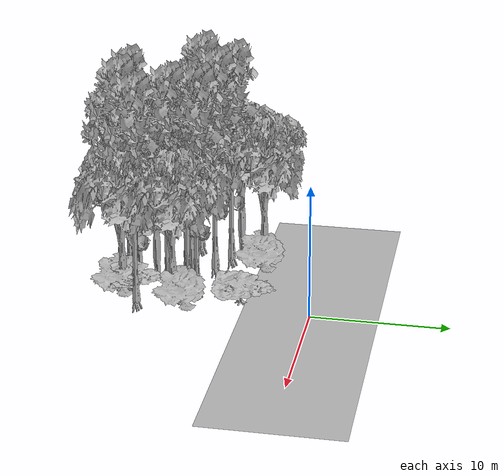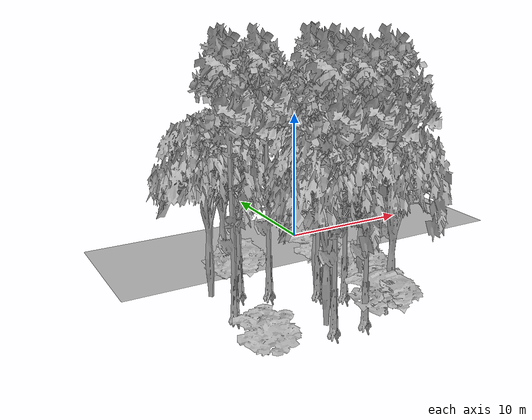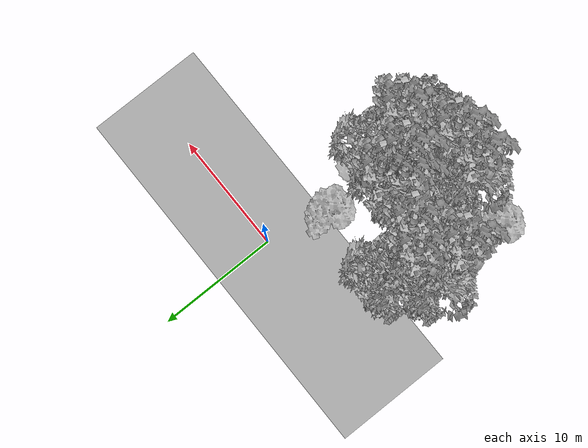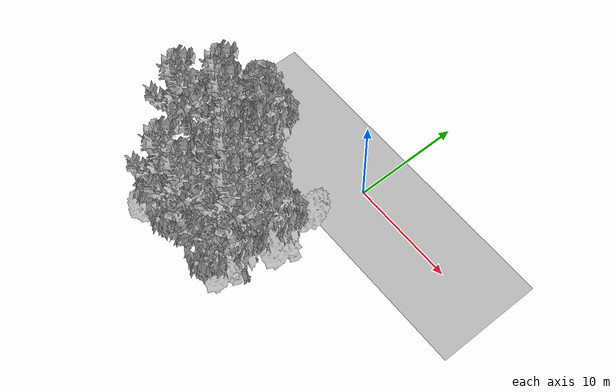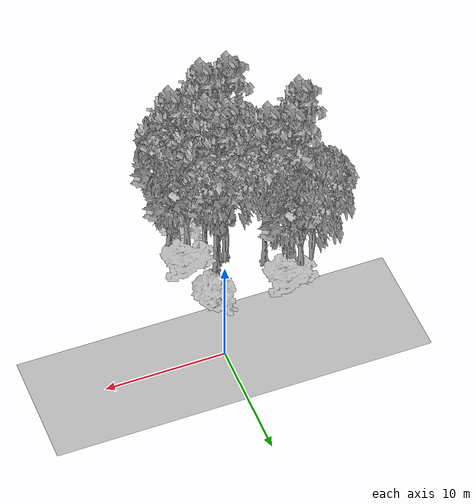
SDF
<sdf version="1.7">
 <world name="default">
  <model name="ground_plane">
   <static>1</static>
   <link name="link">
    <collision name="collision">
     <pose>-50 0 0 0 -0 0</pose>
     <geometry><plane><normal>0 0 1</normal><size>100 100</size></plane></geometry>
     <surface><contact><ode><min_depth>0.01</min_depth><max_vel>0</max_vel></ode></contact></surface>
    </collision>
    <visual name="grass">
     <cast_shadows>0</cast_shadows>
     <geometry>
      <mesh>
       <scale>0.5814285714285714 0.18142857142857144 0.1</scale>
       <uri>file://grass_plane/meshes/grass_plane.dae</uri>
      </mesh>
     </geometry>
    </visual>
   </link>
  </model>
  <model name="Tree 39">
   <static>1</static>
   <pose>-1.0714701937156619 -13.886423853938327 0 1.57079 -0 0</pose>
   <link name="link">
    <collision name="collision">
     <geometry><mesh><scale>3.5 5 3.5</scale><uri>model://tree_2/meshes/tree_2.obj</uri></mesh></geometry>
    </collision>
    <visual name="visual">
     <geometry><mesh><scale>3.5 5 3.5</scale><uri>model://tree_2/meshes/tree_2.obj</uri></mesh></geometry>
    </visual>
   </link>
  </model>
  <model name="Tree 43">
   <static>1</static>
   <pose>-6.698750496730447 -8.265199225288452 0 1.57079 -0 0</pose>
   <link name="link">
    <collision name="collision">
     <geometry><mesh><scale>3.5 5 3.5</scale><uri>model://tree_9/meshes/tree_9.obj</uri></mesh></geometry>
    </collision>
    <visual name="visual">
     <geometry><mesh><scale>3.5 5 3.5</scale><uri>model://tree_9/meshes/tree_9.obj</uri></mesh></geometry>
    </visual>
   </link>
  </model>
  <model name="Tree 58">
   <static>1</static>
   <pose>-3.5384705290955267 -14.71500353287118 0 1.57079 -0 0</pose>
   <link name="link">
    <collision name="collision">
     <geometry><mesh><scale>3.5 5 3.5</scale><uri>model://tree_9/meshes/tree_9.obj</uri></mesh></geometry>
    </collision>
    <visual name="visual">
     <geometry><mesh><scale>3.5 5 3.5</scale><uri>model://tree_9/meshes/tree_9.obj</uri></mesh></geometry>
    </visual>
   </link>
  </model>
  <model name="Tree 110">
   <static>1</static>
   <pose>-3.787657247852138 -9.318720739605117 0 1.57079 -0 0</pose>
   <link name="link">
    <collision name="collision">
     <geometry><mesh><scale>3.5 5 3.5</scale><uri>model://tree_2/meshes/tree_2.obj</uri></mesh></geometry>
    </collision>
    <visual name="visual">
     <geometry><mesh><scale>3.5 5 3.5</scale><uri>model://tree_2/meshes/tree_2.obj</uri></mesh></geometry>
    </visual>
   </link>
  </model>
  <model name="Tree 123">
   <static>1</static>
   <pose>-3.8772209081507043 -9.818877494798398 0 1.57079 -0 0</pose>
   <link name="link">
    <collision name="collision">
     <geometry><mesh><scale>3.5 5 3.5</scale><uri>model://tree_9/meshes/tree_9.obj</uri></mesh></geometry>
    </collision>
    <visual name="visual">
     <geometry><mesh><scale>3.5 5 3.5</scale><uri>model://tree_9/meshes/tree_9.obj</uri></mesh></geometry>
    </visual>
   </link>
  </model>
  <model name="Tree 160">
   <static>1</static>
   <pose>-5.743999839815061 -14.662072047235222 0 1.57079 -0 0</pose>
   <link name="link">
    <collision name="collision">
     <geometry><mesh><scale>3.5 5 3.5</scale><uri>model://tree_9/meshes/tree_9.obj</uri></mesh></geometry>
    </collision>
    <visual name="visual">
     <geometry><mesh><scale>3.5 5 3.5</scale><uri>model://tree_9/meshes/tree_9.obj</uri></mesh></geometry>
    </visual>
   </link>
  </model>
  <model name="Tree 187">
   <static>1</static>
   <pose>-1.8219730495973252 -13.506756836395496 0 1.57079 -0 0</pose>
   <link name="link">
    <collision name="collision">
     <geometry><mesh><scale>4 2.5 4</scale><uri>model://tree_1/meshes/tree_1.obj</uri></mesh></geometry>
    </collision>
    <visual name="visual">
     <geometry><mesh><scale>4 2.5 4</scale><uri>model://tree_1/meshes/tree_1.obj</uri></mesh></geometry>
    </visual>
   </link>
  </model>
  <model name="Tree 214">
   <static>1</static>
   <pose>-10.539388866543895 -14.843552277376098 0 1.57079 -0 0</pose>
   <link name="link">
    <collision name="collision">
     <geometry><mesh><scale>4 2.5 4</scale><uri>model://tree_1/meshes/tree_1.obj</uri></mesh></geometry>
    </collision>
    <visual name="visual">
     <geometry><mesh><scale>4 2.5 4</scale><uri>model://tree_1/meshes/tree_1.obj</uri></mesh></geometry>
    </visual>
   </link>
  </model>
  <model name="Tree 249">
   <static>1</static>
   <pose>-0.4605138180943271 -9.611350338870288 0 1.57079 -0 0</pose>
   <link name="link">
    <collision name="collision">
     <geometry><mesh><scale>3 2 3</scale><uri>model://tree_3/meshes/tree_3.obj</uri></mesh></geometry>
    </collision>
    <visual name="visual">
     <geometry><mesh><scale>3 2 3</scale><uri>model://tree_3/meshes/tree_3.obj</uri></mesh></geometry>
    </visual>
   </link>
  </model>
  <model name="Tree 257">
   <static>1</static>
   <pose>-1.7752712343494323 -14.544529926932515 0 1.57079 -0 0</pose>
   <link name="link">
    <collision name="collision">
     <geometry><mesh><scale>3 2 3</scale><uri>model://tree_3/meshes/tree_3.obj</uri></mesh></geometry>
    </collision>
    <visual name="visual">
     <geometry><mesh><scale>3 2 3</scale><uri>model://tree_3/meshes/tree_3.obj</uri></mesh></geometry>
    </visual>
   </link>
  </model>
  <model name="Tree 298">
   <static>1</static>
   <pose>-7.560866436063726 -5.078326338533593 0 1.57079 -0 0</pose>
   <link name="link">
    <collision name="collision">
     <geometry><mesh><scale>3 2 3</scale><uri>model://tree_3/meshes/tree_3.obj</uri></mesh></geometry>
    </collision>
    <visual name="visual">
     <geometry><mesh><scale>3 2 3</scale><uri>model://tree_3/meshes/tree_3.obj</uri></mesh></geometry>
    </visual>
   </link>
  </model>
  <model name="Tree 321">
   <static>1</static>
   <pose>-4.506508529440623 -12.213649152425335 0 1.57079 -0 0</pose>
   <link name="link">
    <collision name="collision">
     <geometry><mesh><scale>3.5 5 3.5</scale><uri>model://tree_2/meshes/tree_2.obj</uri></mesh></geometry>
    </collision>
    <visual name="visual">
     <geometry><mesh><scale>3.5 5 3.5</scale><uri>model://tree_2/meshes/tree_2.obj</uri></mesh></geometry>
    </visual>
   </link>
  </model>
  <model name="Tree 330">
   <static>1</static>
   <pose>-5.9228429579058215 -13.978351799637817 0 1.57079 -0 0</pose>
   <link name="link">
    <collision name="collision">
     <geometry><mesh><scale>3.5 5 3.5</scale><uri>model://tree_2/meshes/tree_2.obj</uri></mesh></geometry>
    </collision>
    <visual name="visual">
     <geometry><mesh><scale>3.5 5 3.5</scale><uri>model://tree_2/meshes/tree_2.obj</uri></mesh></geometry>
    </visual>
   </link>
  </model>
  <model name="Tree 340">
   <static>1</static>
   <pose>-2.6601279080819538 -8.766913730618775 0 1.57079 -0 0</pose>
   <link name="link">
    <collision name="collision">
     <geometry><mesh><scale>3.5 5 3.5</scale><uri>model://tree_9/meshes/tree_9.obj</uri></mesh></geometry>
    </collision>
    <visual name="visual">
     <geometry><mesh><scale>3.5 5 3.5</scale><uri>model://tree_9/meshes/tree_9.obj</uri></mesh></geometry>
    </visual>
   </link>
  </model>
  <model name="Tree 344">
   <static>1</static>
   <pose>-8.427684292424416 -7.361418327361154 0 1.57079 -0 0</pose>
   <link name="link">
    <collision name="collision">
     <geometry><mesh><scale>3.5 5 3.5</scale><uri>model://tree_9/meshes/tree_9.obj</uri></mesh></geometry>
    </collision>
    <visual name="visual">
     <geometry><mesh><scale>3.5 5 3.5</scale><uri>model://tree_9/meshes/tree_9.obj</uri></mesh></geometry>
    </visual>
   </link>
  </model>
  <model name="Tree 361">
   <static>1</static>
   <pose>-1.4120364282684648 -5.237937094656106 0 1.57079 -0 0</pose>
   <link name="link">
    <collision name="collision">
     <geometry><mesh><scale>4 2.5 4</scale><uri>model://tree_1/meshes/tree_1.obj</uri></mesh></geometry>
    </collision>
    <visual name="visual">
     <geometry><mesh><scale>4 2.5 4</scale><uri>model://tree_1/meshes/tree_1.obj</uri></mesh></geometry>
    </visual>
   </link>
  </model>
  <model name="Tree 397">
   <static>1</static>
   <pose>-10.071957356130135 -10.101780674697197 0 1.57079 -0 0</pose>
   <link name="link">
    <collision name="collision">
     <geometry><mesh><scale>3.5 5 3.5</scale><uri>model://tree_9/meshes/tree_9.obj</uri></mesh></geometry>
    </collision>
    <visual name="visual">
     <geometry><mesh><scale>3.5 5 3.5</scale><uri>model://tree_9/meshes/tree_9.obj</uri></mesh></geometry>
    </visual>
   </link>
  </model>
  <model name="Tree 435">
   <static>1</static>
   <pose>-8.461471870995176 -4.792090363678849 0 1.57079 -0 0</pose>
   <link name="link">
    <collision name="collision">
     <geometry><mesh><scale>3.5 5 3.5</scale><uri>model://tree_2/meshes/tree_2.obj</uri></mesh></geometry>
    </collision>
    <visual name="visual">
     <geometry><mesh><scale>3.5 5 3.5</scale><uri>model://tree_2/meshes/tree_2.obj</uri></mesh></geometry>
    </visual>
   </link>
  </model>
  <model name="Tree 441">
   <static>1</static>
   <pose>-2.5051233544445495 -10.924834991775505 0 1.57079 -0 0</pose>
   <link name="link">
    <collision name="collision">
     <geometry><mesh><scale>3.5 5 3.5</scale><uri>model://tree_9/meshes/tree_9.obj</uri></mesh></geometry>
    </collision>
    <visual name="visual">
     <geometry><mesh><scale>3.5 5 3.5</scale><uri>model://tree_9/meshes/tree_9.obj</uri></mesh></geometry>
    </visual>
   </link>
  </model>
  <model name="Tree 444">
   <static>1</static>
   <pose>-0.7411984923797661 -10.088475598795798 0 1.57079 -0 0</pose>
   <link name="link">
    <collision name="collision">
     <geometry><mesh><scale>3.5 5 3.5</scale><uri>model://tree_2/meshes/tree_2.obj</uri></mesh></geometry>
    </collision>
    <visual name="visual">
     <geometry><mesh><scale>3.5 5 3.5</scale><uri>model://tree_2/meshes/tree_2.obj</uri></mesh></geometry>
    </visual>
   </link>
  </model>
  <model name="Tree 449">
   <static>1</static>
   <pose>-3.127604765842662 -9.56061625436691 0 1.57079 -0 0</pose>
   <link name="link">
    <collision name="collision">
     <geometry><mesh><scale>3.5 5 3.5</scale><uri>model://tree_9/meshes/tree_9.obj</uri></mesh></geometry>
    </collision>
    <visual name="visual">
     <geometry><mesh><scale>3.5 5 3.5</scale><uri>model://tree_9/meshes/tree_9.obj</uri></mesh></geometry>
    </visual>
   </link>
  </model>
  <model name="Tree 471">
   <static>1</static>
   <pose>-10.371564620148568 -6.92565322875571 0 1.57079 -0 0</pose>
   <link name="link">
    <collision name="collision">
     <geometry><mesh><scale>3.5 5 3.5</scale><uri>model://tree_2/meshes/tree_2.obj</uri></mesh></geometry>
    </collision>
    <visual name="visual">
     <geometry><mesh><scale>3.5 5 3.5</scale><uri>model://tree_2/meshes/tree_2.obj</uri></mesh></geometry>
    </visual>
   </link>
  </model>
  <model name="Tree 515">
   <static>1</static>
   <pose>-0.1261859208774112 -12.704717829699842 0 1.57079 -0 0</pose>
   <link name="link">
    <collision name="collision">
     <geometry><mesh><scale>3.5 5 3.5</scale><uri>model://tree_9/meshes/tree_9.obj</uri></mesh></geometry>
    </collision>
    <visual name="visual">
     <geometry><mesh><scale>3.5 5 3.5</scale><uri>model://tree_9/meshes/tree_9.obj</uri></mesh></geometry>
    </visual>
   </link>
  </model>
 </world>
</sdf>
